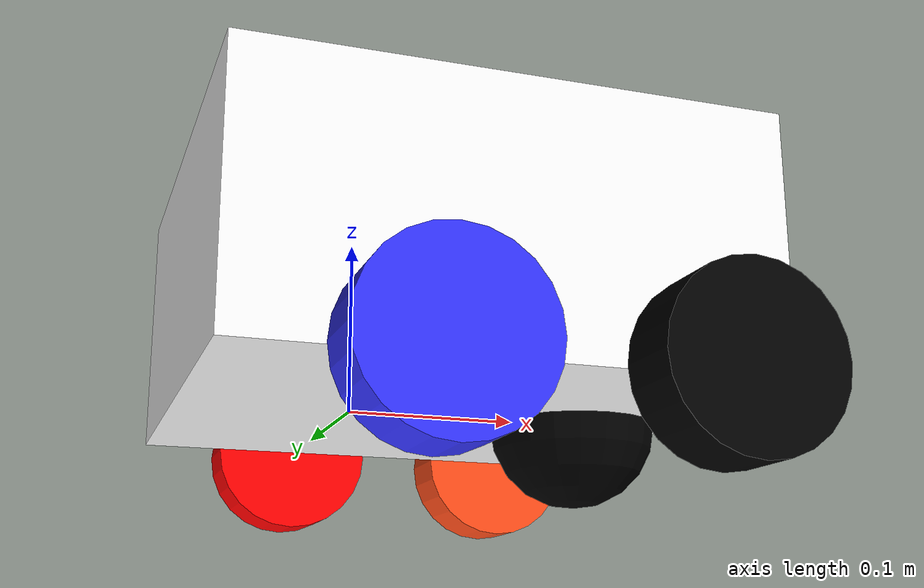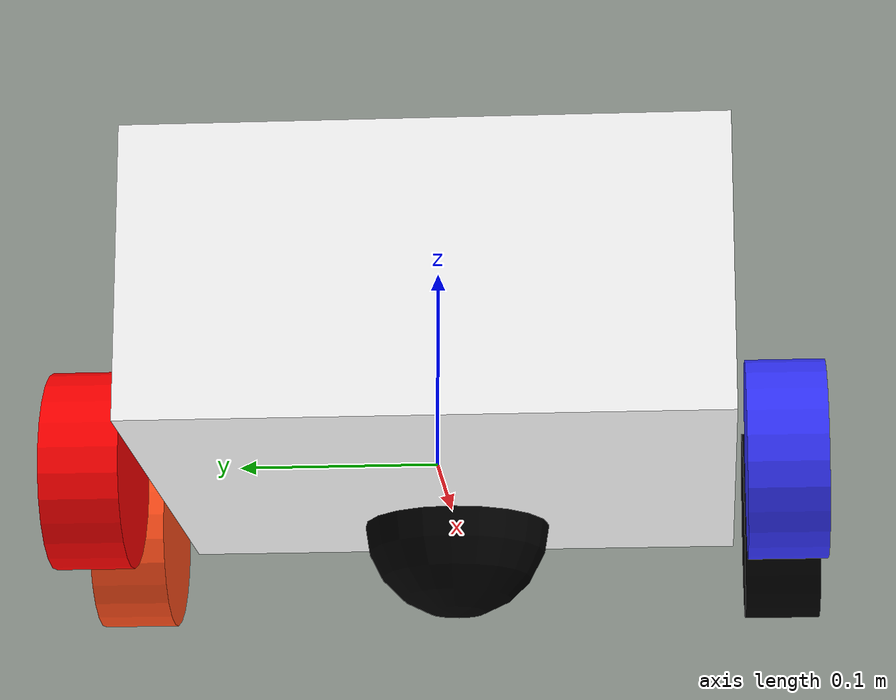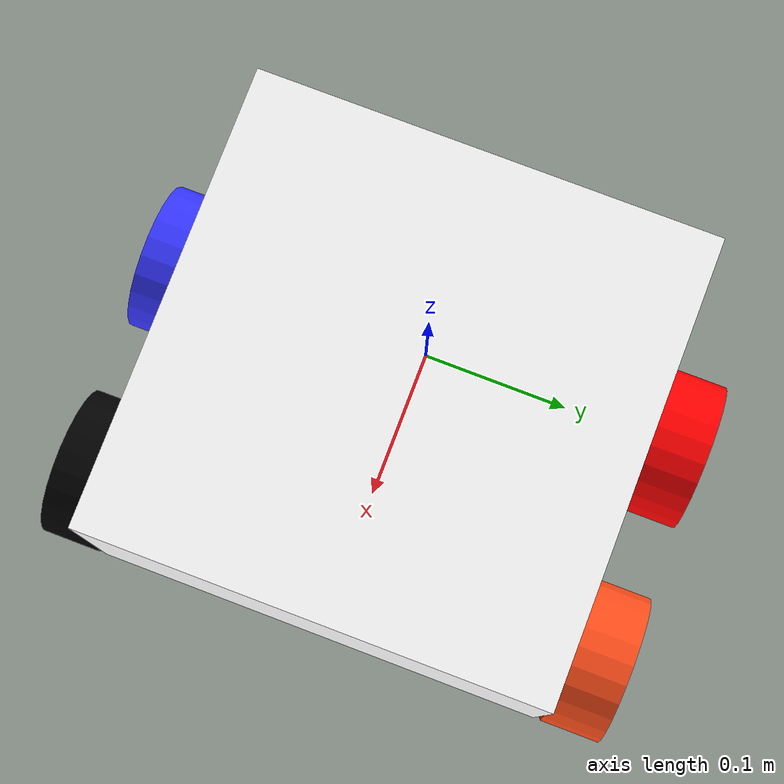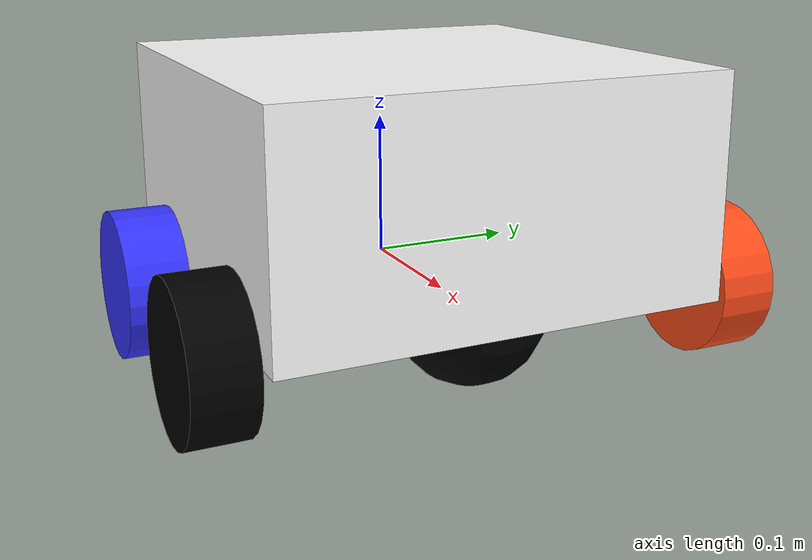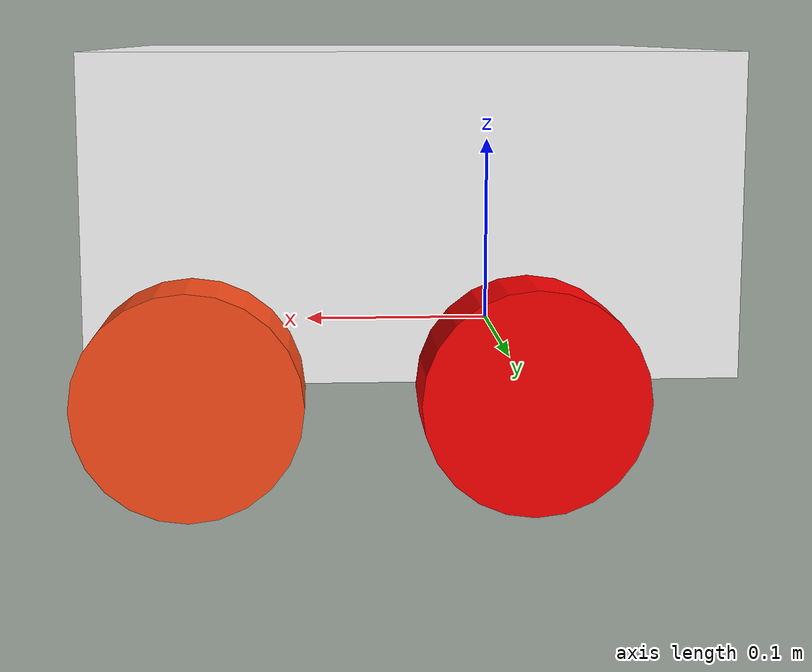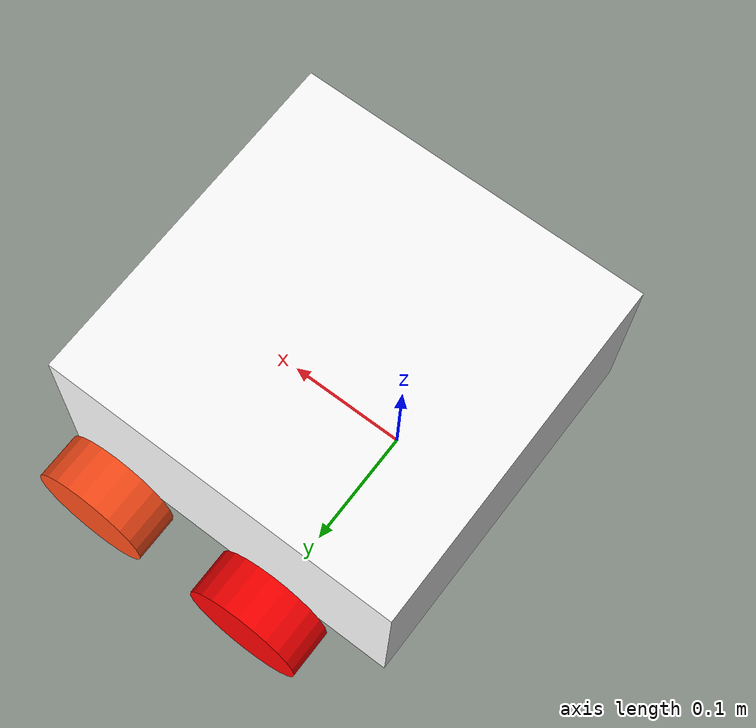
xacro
<?xml version="1.0"?>
<robot xmlns:xacro="http://www.ros.org/wiki/xacro" >
<xacro:include filename="inertial_macros.xacro" />

 <material name="white">
     <color rgba="1 1 1 1" />
 </material>

 <material name="orange">
     <color rgba="1 0.3 0.1 1"/>
 </material>

 <material name="blue">
     <color rgba="0.2 0.2 1 1"/>
 </material>

 <material name="black">
     <color rgba="0 0 0 1"/>
 </material>

 <material name="red">
     <color rgba="1 0 0 1"/>
 </material>

 <!-- BASE LINK -->

 <link name="base_link">

 </link>

 <joint name="chassis_joint" type="fixed">
 <parent link="base_link"/>
 <child link="chassis"/>
 <origin xyz="-0.1 0 0"/>
</joint>

<link name="chassis">
 <visual>
     <origin xyz="0.15 0 0.075" rpy="0 0 0"/>
     <geometry>
         <box size="0.3 0.3 0.15"/>
     </geometry>
     <material name="white"/>
 </visual>
<collision>
    <origin xyz="0.15 0 0.075" rpy="0 0 0"/>
    <geometry>
        <box size="0.3 0.3 0.15"/>
    </geometry>
</collision>
  <xacro:inertial_box mass="0.5" x="0.3" y="0.3" z="0.15">
      <origin xyz="0.15 0 0.075" rpy="0 0 0"/>
  </xacro:inertial_box>

</link>

<gazebo reference="chassis">
   <material>Gazebo/White</material>
</gazebo>

  <!-- LEFT WHEEL -->

  <joint name="left_wheel_joint" type="continuous">
    <parent link="base_link"/>
    <child link="left_wheel"/>
    <origin xyz="0 0.175 0" rpy="-${pi/2} 0 0"/>
    <axis xyz="0 0 1"/>
  </joint>

  <link name="left_wheel">
    <visual>
        <geometry>
            <cylinder length="0.04" radius="0.05" />
        </geometry>
        <material name="red"/>
    </visual>
    <collision>
        <geometry>
            <cylinder length="0.04" radius="0.05" />
        </geometry>
</collision>
  <xacro:inertial_cylinder mass="0.1" length="0.05" radius="0.05">
      <origin xyz="0 0 0" rpy="0 0 0"/>
  </xacro:inertial_cylinder>
  </link>

  <gazebo reference="left_wheel">
   <material>Gazebo/Red</material>
</gazebo>

  <!-- LEFT WHEEL 2ND -->

  <joint name="left_wheel_joint2" type="continuous">
    <parent link="base_link"/>
    <child link="left_wheel2"/>
    <origin xyz="0.15 0.175 0" rpy="-${pi/2} 0 0"/>
    <axis xyz="0 0 1"/>
  </joint>

  <link name="left_wheel2">
    <visual>
        <geometry>
            <cylinder length="0.04" radius="0.05" />
        </geometry>
        <material name="orange"/>
    </visual>
    <collision>
        <geometry>
            <cylinder length="0.04" radius="0.05" />
        </geometry>
</collision>
  <xacro:inertial_cylinder mass="0.1" length="0.05" radius="0.05">
      <origin xyz="0 0 0" rpy="0 0 0"/>
  </xacro:inertial_cylinder>
  </link>

  <gazebo reference="left_wheel2">
   <material>Gazebo/Orange</material>
</gazebo>

<!-- RIGHT WHEEL -->

<joint name="right_wheel_joint" type="continuous">
<parent link="base_link"/>
<child link="right_wheel"/>
<origin xyz="0 -0.175 0" rpy="${pi/2} 0 0"/>
<axis xyz="0 0 -1"/>
</joint>

<link name="right_wheel">
<visual>
    <geometry>
        <cylinder length="0.04" radius="0.05" />
    </geometry>
    <material name="blue"/>
</visual>
    <collision>
        <geometry>
            <cylinder length="0.04" radius="0.05" />
        </geometry>
</collision>
  <xacro:inertial_cylinder mass="0.1" length="0.05" radius="0.05">
      <origin xyz="0 0 0" rpy="0 0 0"/>
  </xacro:inertial_cylinder>
</link>

  <gazebo reference="right_wheel">
   <material>Gazebo/Blue</material>
</gazebo>

<!-- RIGHT WHEEL 2ND-->

<joint name="right_wheel_joint2" type="continuous">
<parent link="base_link"/>
<child link="right_wheel2"/>
<origin xyz="0.15 -0.175 0" rpy="${pi/2} 0 0"/>
<axis xyz="0 0 -1"/>
</joint>

<link name="right_wheel2">
<visual>
    <geometry>
        <cylinder length="0.04" radius="0.05" />
    </geometry>
    <material name="black"/>
</visual>
    <collision>
        <geometry>
            <cylinder length="0.04" radius="0.05" />
        </geometry>
</collision>
  <xacro:inertial_cylinder mass="0.1" length="0.05" radius="0.05">
      <origin xyz="0 0 0" rpy="0 0 0"/>
  </xacro:inertial_cylinder>
</link>

  <gazebo reference="right_wheel2">
   <material>Gazebo/Black</material>
</gazebo>

<!-- CASTER WHEEL -->

<joint name="caster_wheel_joint" type="fixed">
<parent link="chassis"/>
<child link="caster_wheel"/>
<origin xyz="0.24 0 0" rpy="0 0 0"/>
</joint>

<link name="caster_wheel">
<visual>
    <geometry>
        <sphere radius="0.05" />
    </geometry>
    <material name="black"/>
</visual>
 <collision>
        <geometry>
            <sphere radius="0.05" />
        </geometry>
</collision>
  <xacro:inertial_sphere mass="0.1" radius="0.05">
      <origin xyz="0 0 0" rpy="0 0 0"/>
  </xacro:inertial_sphere>
</link>

  <gazebo reference="caster_wheel">
   <material>Gazebo/Black</material>
       <mu1 value="1"/>
    <mu2 value="0"/>
</gazebo>

</robot>
